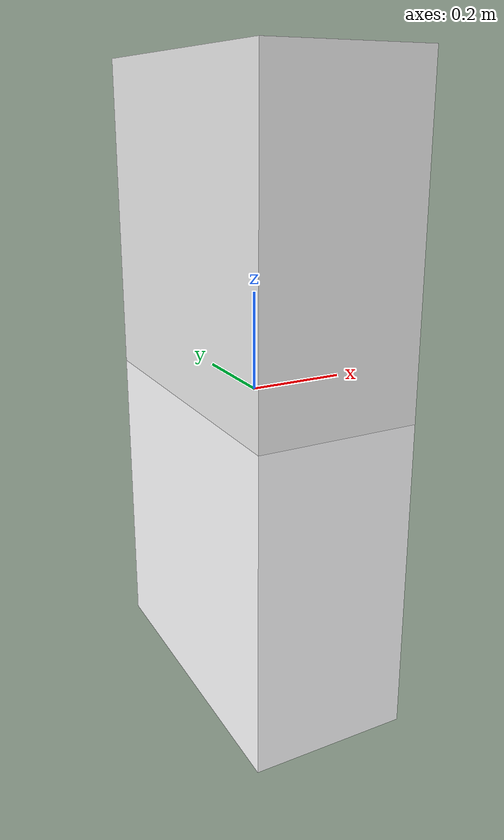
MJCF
<mujoco model="target">
  <compiler meshdir="assets" texturedir="assets" autolimits="true"/>
  <default>
    <default class="visual">
      <geom group="2" type="mesh" contype="0" conaffinity="0"/>
    </default>
    <default class="collision">
      <geom group="3" type="mesh"/>
    </default>
  </default>
  <asset>
    <material name="254,254,255" specular="0.9973853333333333" shininess="1.0" rgba="0.996078 0.996078 1.000000 1.000000"/>
    <material name="235,235,235" specular="1.0" shininess="1.0" rgba="0.921569 0.921569 0.921569 1.000000"/>
    <mesh file="object_0.obj"/>
    <mesh file="object_1.obj"/>
  </asset>
  <worldbody>
    <body name="object">
      <geom mesh="object_0" material="235,235,235" class="visual"/>
      <geom mesh="object_1" material="254,254,255" class="visual"/>
      <geom mesh="object_0" class="collision"/>
      <geom mesh="object_1" class="collision"/>
    </body>
  </worldbody>
</mujoco>
